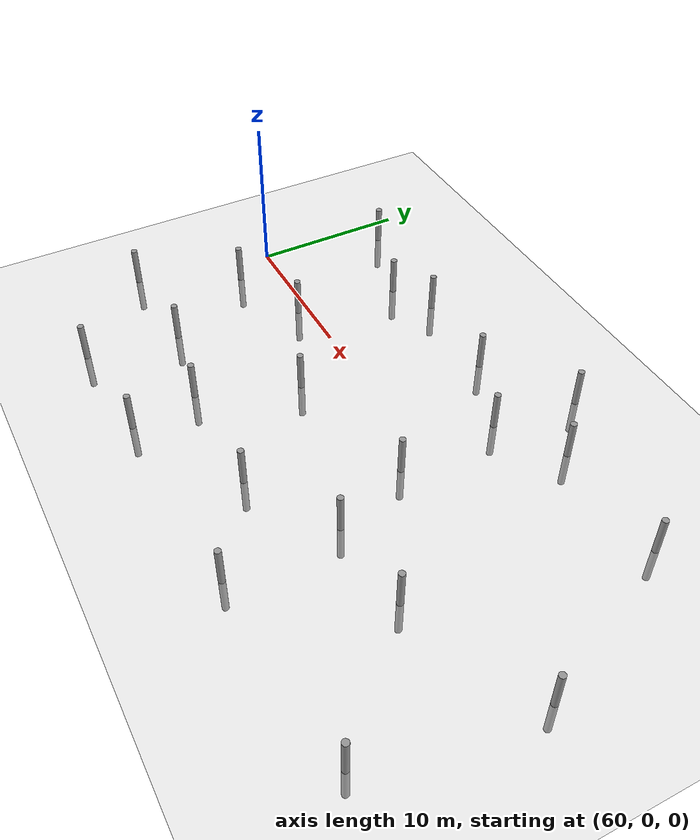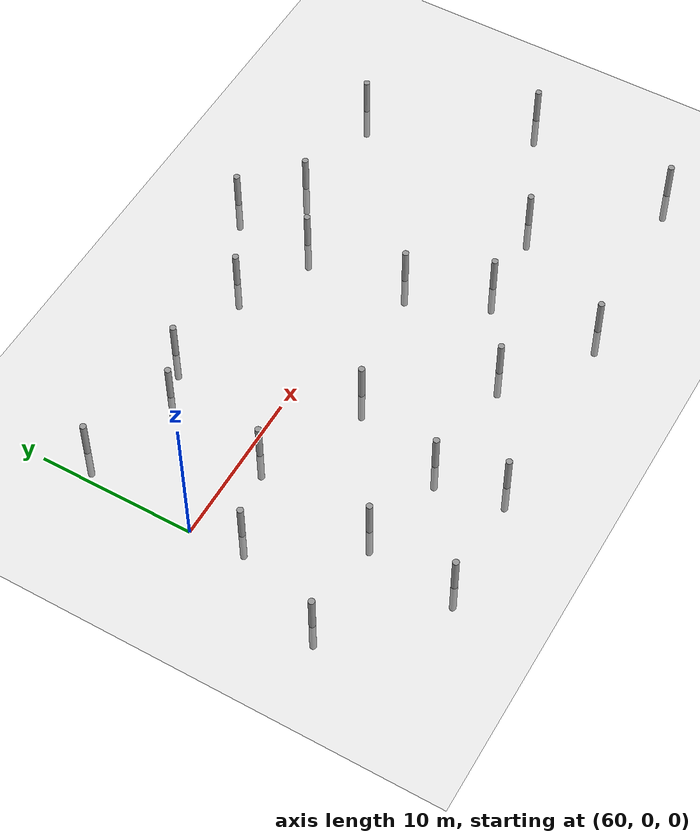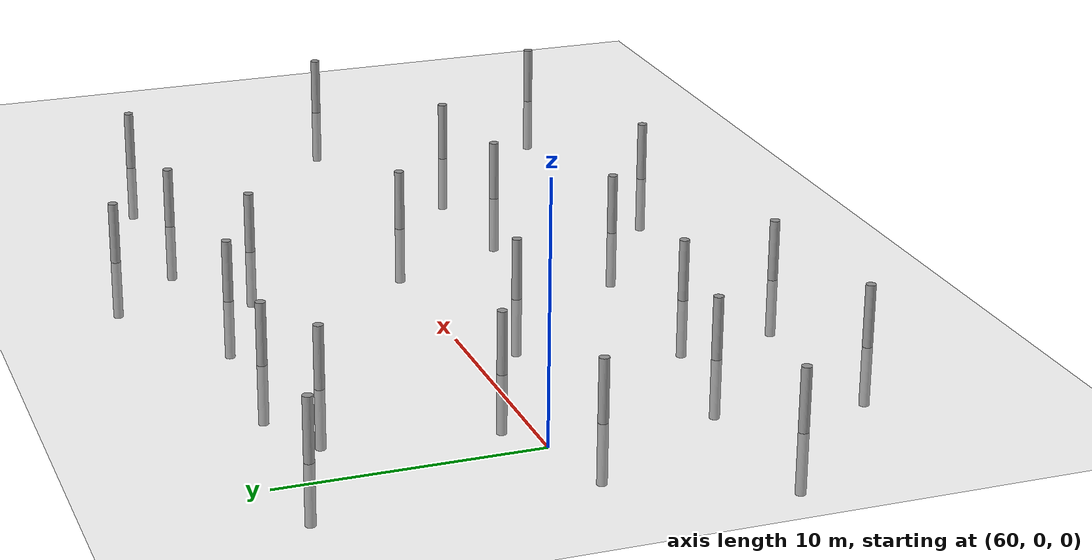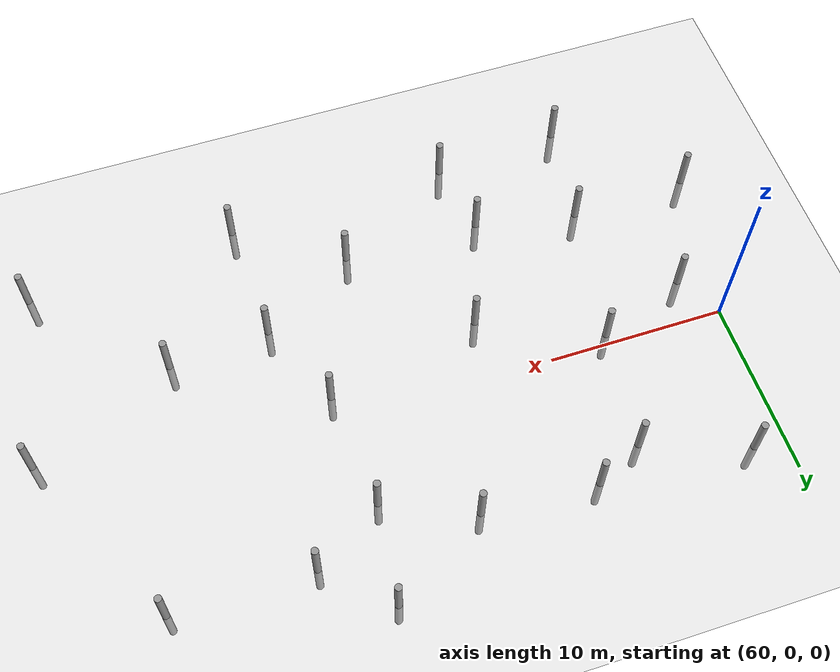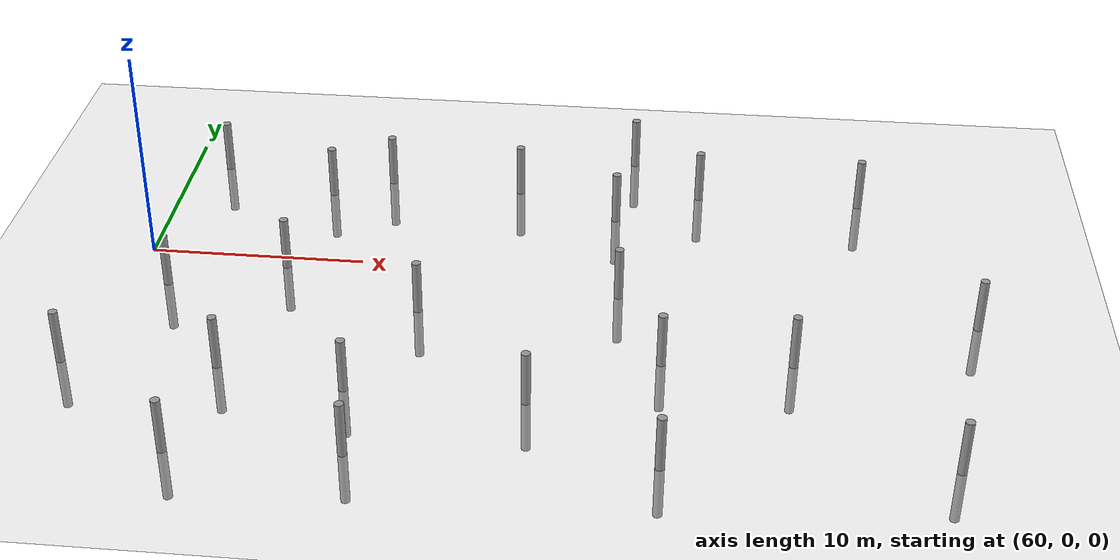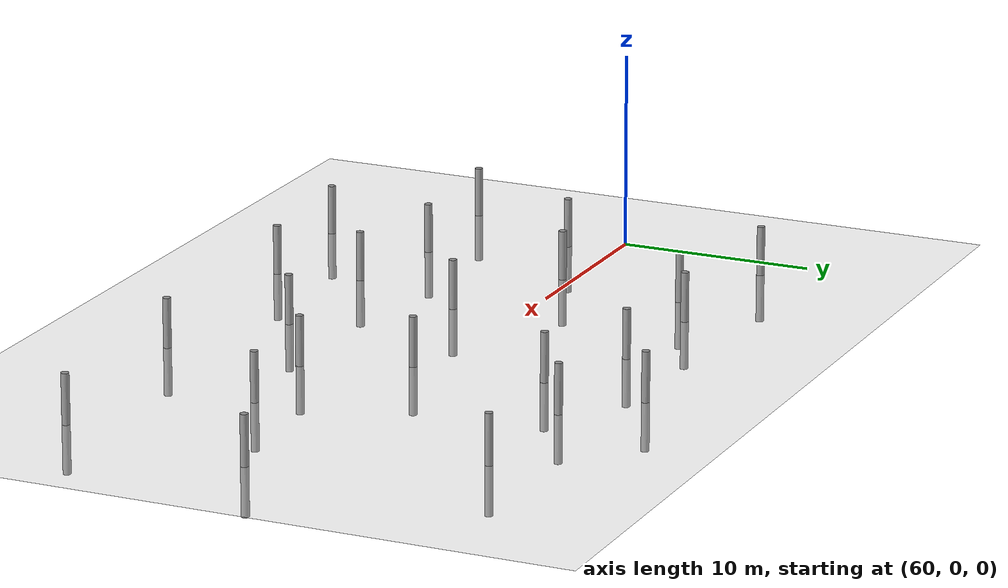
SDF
<sdf version="1.6">
 <world name="default">
  <model name="ground_plane">
   <static>1</static>
   <link name="link">
    <collision name="collision">
     <geometry><plane><normal>0 0 1</normal><size>100 100</size></plane></geometry>
     <surface><friction><ode><mu>100</mu><mu2>50</mu2></ode></friction></surface>
    </collision>
    <visual name="visual">
     <cast_shadows>0</cast_shadows>
     <geometry><plane><normal>0 0 1</normal><size>100 100</size></plane></geometry>
     <material>
      <script><uri>file://media/materials/scripts/gazebo.material</uri><name>Gazebo/Grey</name></script>
     </material>
    </visual>
   </link>
  </model>
  <model name="empty_pillars_3">
   <model name="empty_pillar_clone_11">
    <link name="link">
     <inertial>
      <mass>1</mass>
      <inertia><ixx>0.145833</ixx><ixy>0</ixy><ixz>0</ixz><iyy>0.145833</iyy><iyz>0</iyz><izz>0.125</izz></inertia>
     </inertial>
     <visual name="visual">
      <geometry><cylinder><radius>0.2</radius><length>5</length></cylinder></geometry>
      <material>
       <script><name>Gazebo/Grey</name><uri>file://media/materials/scripts/gazebo.material</uri></script>
       <shader type="vertex"><normal_map>__default__</normal_map></shader>
       <ambient>0.3 0.3 0.3 1</ambient>
       <diffuse>0.7 0.7 0.7 1</diffuse>
       <specular>0.01 0.01 0.01 1</specular>
       <emissive>0 0 0 1</emissive>
      </material>
     </visual>
     <collision name="collision">
      <geometry><cylinder><radius>0.05</radius><length>5</length></cylinder></geometry>
      <surface>
       <friction>
        <ode><mu>1</mu><mu2>1</mu2><fdir1>0 0 0</fdir1><slip1>0</slip1><slip2>0</slip2></ode>
        <torsional>
         <coefficient>1</coefficient>
         <patch_radius>0</patch_radius>
         <surface_radius>0</surface_radius>
         <use_patch_radius>1</use_patch_radius>
         <ode><slip>0</slip></ode>
        </torsional>
       </friction>
       <bounce><restitution_coefficient>0</restitution_coefficient><threshold>1e+06</threshold></bounce>
       <contact>
        <collide_without_contact>0</collide_without_contact>
        <collide_without_contact_bitmask>1</collide_without_contact_bitmask>
        <collide_bitmask>1</collide_bitmask>
        <ode>
         <soft_cfm>0</soft_cfm>
         <soft_erp>0.2</soft_erp>
         <kp>1e+13</kp>
         <kd>1</kd>
         <max_vel>0.01</max_vel>
         <min_depth>0</min_depth>
        </ode>
        <bullet>
         <split_impulse>1</split_impulse>
         <split_impulse_penetration_threshold>-0.01</split_impulse_penetration_threshold>
         <soft_cfm>0</soft_cfm>
         <soft_erp>0.2</soft_erp>
         <kp>1e+13</kp>
         <kd>1</kd>
        </bullet>
       </contact>
      </surface>
     </collision>
    </link>
    <static>0</static>
    <pose>7.98536 -17.8403 0 0 -0 0</pose>
   </model>
   <model name="empty_pillar_clone_12">
    <link name="link">
     <inertial>
      <mass>1</mass>
      <inertia><ixx>0.145833</ixx><ixy>0</ixy><ixz>0</ixz><iyy>0.145833</iyy><iyz>0</iyz><izz>0.125</izz></inertia>
     </inertial>
     <visual name="visual">
      <geometry><cylinder><radius>0.2</radius><length>5</length></cylinder></geometry>
      <material>
       <script><name>Gazebo/Grey</name><uri>file://media/materials/scripts/gazebo.material</uri></script>
       <shader type="vertex"><normal_map>__default__</normal_map></shader>
       <ambient>0.3 0.3 0.3 1</ambient>
       <diffuse>0.7 0.7 0.7 1</diffuse>
       <specular>0.01 0.01 0.01 1</specular>
       <emissive>0 0 0 1</emissive>
      </material>
     </visual>
     <collision name="collision">
      <geometry><cylinder><radius>0.05</radius><length>5</length></cylinder></geometry>
      <surface>
       <friction>
        <ode><mu>1</mu><mu2>1</mu2><fdir1>0 0 0</fdir1><slip1>0</slip1><slip2>0</slip2></ode>
        <torsional>
         <coefficient>1</coefficient>
         <patch_radius>0</patch_radius>
         <surface_radius>0</surface_radius>
         <use_patch_radius>1</use_patch_radius>
         <ode><slip>0</slip></ode>
        </torsional>
       </friction>
       <bounce><restitution_coefficient>0</restitution_coefficient><threshold>1e+06</threshold></bounce>
       <contact>
        <collide_without_contact>0</collide_without_contact>
        <collide_without_contact_bitmask>1</collide_without_contact_bitmask>
        <collide_bitmask>1</collide_bitmask>
        <ode>
         <soft_cfm>0</soft_cfm>
         <soft_erp>0.2</soft_erp>
         <kp>1e+13</kp>
         <kd>1</kd>
         <max_vel>0.01</max_vel>
         <min_depth>0</min_depth>
        </ode>
        <bullet>
         <split_impulse>1</split_impulse>
         <split_impulse_penetration_threshold>-0.01</split_impulse_penetration_threshold>
         <soft_cfm>0</soft_cfm>
         <soft_erp>0.2</soft_erp>
         <kp>1e+13</kp>
         <kd>1</kd>
        </bullet>
       </contact>
      </surface>
     </collision>
    </link>
    <static>0</static>
    <pose>-4.01464 -20.8403 0 0 -0 0</pose>
   </model>
   <model name="empty_pillar_clone_34">
    <link name="link">
     <inertial>
      <mass>1</mass>
      <inertia><ixx>0.145833</ixx><ixy>0</ixy><ixz>0</ixz><iyy>0.145833</iyy><iyz>0</iyz><izz>0.125</izz></inertia>
     </inertial>
     <visual name="visual">
      <geometry><cylinder><radius>0.2</radius><length>5</length></cylinder></geometry>
      <material>
       <script><name>Gazebo/Grey</name><uri>file://media/materials/scripts/gazebo.material</uri></script>
       <shader type="vertex"><normal_map>__default__</normal_map></shader>
       <ambient>0.3 0.3 0.3 1</ambient>
       <diffuse>0.7 0.7 0.7 1</diffuse>
       <specular>0.01 0.01 0.01 1</specular>
       <emissive>0 0 0 1</emissive>
      </material>
     </visual>
     <collision name="collision">
      <geometry><cylinder><radius>0.05</radius><length>5</length></cylinder></geometry>
      <surface>
       <friction>
        <ode><mu>1</mu><mu2>1</mu2><fdir1>0 0 0</fdir1><slip1>0</slip1><slip2>0</slip2></ode>
        <torsional>
         <coefficient>1</coefficient>
         <patch_radius>0</patch_radius>
         <surface_radius>0</surface_radius>
         <use_patch_radius>1</use_patch_radius>
         <ode><slip>0</slip></ode>
        </torsional>
       </friction>
       <bounce><restitution_coefficient>0</restitution_coefficient><threshold>1e+06</threshold></bounce>
       <contact>
        <collide_without_contact>0</collide_without_contact>
        <collide_without_contact_bitmask>1</collide_without_contact_bitmask>
        <collide_bitmask>1</collide_bitmask>
        <ode>
         <soft_cfm>0</soft_cfm>
         <soft_erp>0.2</soft_erp>
         <kp>1e+13</kp>
         <kd>1</kd>
         <max_vel>0.01</max_vel>
         <min_depth>0</min_depth>
        </ode>
        <bullet>
         <split_impulse>1</split_impulse>
         <split_impulse_penetration_threshold>-0.01</split_impulse_penetration_threshold>
         <soft_cfm>0</soft_cfm>
         <soft_erp>0.2</soft_erp>
         <kp>1e+13</kp>
         <kd>1</kd>
        </bullet>
       </contact>
      </surface>
     </collision>
    </link>
    <static>0</static>
    <pose>19.0861 -20.8946 0 0 -0 0</pose>
   </model>
   <model name="empty_pillar_clone_42">
    <link name="link">
     <inertial>
      <mass>1</mass>
      <inertia><ixx>0.145833</ixx><ixy>0</ixy><ixz>0</ixz><iyy>0.145833</iyy><iyz>0</iyz><izz>0.125</izz></inertia>
     </inertial>
     <visual name="visual">
      <geometry><cylinder><radius>0.2</radius><length>5</length></cylinder></geometry>
      <material>
       <script><name>Gazebo/Grey</name><uri>file://media/materials/scripts/gazebo.material</uri></script>
       <shader type="vertex"><normal_map>__default__</normal_map></shader>
       <ambient>0.3 0.3 0.3 1</ambient>
       <diffuse>0.7 0.7 0.7 1</diffuse>
       <specular>0.01 0.01 0.01 1</specular>
       <emissive>0 0 0 1</emissive>
      </material>
     </visual>
     <collision name="collision">
      <geometry><cylinder><radius>0.05</radius><length>5</length></cylinder></geometry>
      <surface>
       <friction>
        <ode><mu>1</mu><mu2>1</mu2><fdir1>0 0 0</fdir1><slip1>0</slip1><slip2>0</slip2></ode>
        <torsional>
         <coefficient>1</coefficient>
         <patch_radius>0</patch_radius>
         <surface_radius>0</surface_radius>
         <use_patch_radius>1</use_patch_radius>
         <ode><slip>0</slip></ode>
        </torsional>
       </friction>
       <bounce><restitution_coefficient>0</restitution_coefficient><threshold>1e+06</threshold></bounce>
       <contact>
        <collide_without_contact>0</collide_without_contact>
        <collide_without_contact_bitmask>1</collide_without_contact_bitmask>
        <collide_bitmask>1</collide_bitmask>
        <ode>
         <soft_cfm>0</soft_cfm>
         <soft_erp>0.2</soft_erp>
         <kp>1e+13</kp>
         <kd>1</kd>
         <max_vel>0.01</max_vel>
         <min_depth>0</min_depth>
        </ode>
        <bullet>
         <split_impulse>1</split_impulse>
         <split_impulse_penetration_threshold>-0.01</split_impulse_penetration_threshold>
         <soft_cfm>0</soft_cfm>
         <soft_erp>0.2</soft_erp>
         <kp>1e+13</kp>
         <kd>1</kd>
        </bullet>
       </contact>
      </surface>
     </collision>
    </link>
    <static>0</static>
    <pose>-12.5409 -20.2416 0 0 -0 0</pose>
   </model>
   <model name="empty_pillar_clone_44">
    <link name="link">
     <inertial>
      <mass>1</mass>
      <inertia><ixx>0.145833</ixx><ixy>0</ixy><ixz>0</ixz><iyy>0.145833</iyy><iyz>0</iyz><izz>0.125</izz></inertia>
     </inertial>
     <visual name="visual">
      <geometry><cylinder><radius>0.2</radius><length>5</length></cylinder></geometry>
      <material>
       <script><name>Gazebo/Grey</name><uri>file://media/materials/scripts/gazebo.material</uri></script>
       <shader type="vertex"><normal_map>__default__</normal_map></shader>
       <ambient>0.3 0.3 0.3 1</ambient>
       <diffuse>0.7 0.7 0.7 1</diffuse>
       <specular>0.01 0.01 0.01 1</specular>
       <emissive>0 0 0 1</emissive>
      </material>
     </visual>
     <collision name="collision">
      <geometry><cylinder><radius>0.05</radius><length>5</length></cylinder></geometry>
      <surface>
       <friction>
        <ode><mu>1</mu><mu2>1</mu2><fdir1>0 0 0</fdir1><slip1>0</slip1><slip2>0</slip2></ode>
        <torsional>
         <coefficient>1</coefficient>
         <patch_radius>0</patch_radius>
         <surface_radius>0</surface_radius>
         <use_patch_radius>1</use_patch_radius>
         <ode><slip>0</slip></ode>
        </torsional>
       </friction>
       <bounce><restitution_coefficient>0</restitution_coefficient><threshold>1e+06</threshold></bounce>
       <contact>
        <collide_without_contact>0</collide_without_contact>
        <collide_without_contact_bitmask>1</collide_without_contact_bitmask>
        <collide_bitmask>1</collide_bitmask>
        <ode>
         <soft_cfm>0</soft_cfm>
         <soft_erp>0.2</soft_erp>
         <kp>1e+13</kp>
         <kd>1</kd>
         <max_vel>0.01</max_vel>
         <min_depth>0</min_depth>
        </ode>
        <bullet>
         <split_impulse>1</split_impulse>
         <split_impulse_penetration_threshold>-0.01</split_impulse_penetration_threshold>
         <soft_cfm>0</soft_cfm>
         <soft_erp>0.2</soft_erp>
         <kp>1e+13</kp>
         <kd>1</kd>
        </bullet>
       </contact>
      </surface>
     </collision>
    </link>
    <static>0</static>
    <pose>-6.78285 -22.2729 0 0 -0 0</pose>
   </model>
   <model name="empty_pillar_clone_46">
    <link name="link">
     <inertial>
      <mass>1</mass>
      <inertia><ixx>0.145833</ixx><ixy>0</ixy><ixz>0</ixz><iyy>0.145833</iyy><iyz>0</iyz><izz>0.125</izz></inertia>
     </inertial>
     <visual name="visual">
      <geometry><cylinder><radius>0.2</radius><length>5</length></cylinder></geometry>
      <material>
       <script><name>Gazebo/Grey</name><uri>file://media/materials/scripts/gazebo.material</uri></script>
       <shader type="vertex"><normal_map>__default__</normal_map></shader>
       <ambient>0.3 0.3 0.3 1</ambient>
       <diffuse>0.7 0.7 0.7 1</diffuse>
       <specular>0.01 0.01 0.01 1</specular>
       <emissive>0 0 0 1</emissive>
      </material>
     </visual>
     <collision name="collision">
      <geometry><cylinder><radius>0.05</radius><length>5</length></cylinder></geometry>
      <surface>
       <friction>
        <ode><mu>1</mu><mu2>1</mu2><fdir1>0 0 0</fdir1><slip1>0</slip1><slip2>0</slip2></ode>
        <torsional>
         <coefficient>1</coefficient>
         <patch_radius>0</patch_radius>
         <surface_radius>0</surface_radius>
         <use_patch_radius>1</use_patch_radius>
         <ode><slip>0</slip></ode>
        </torsional>
       </friction>
       <bounce><restitution_coefficient>0</restitution_coefficient><threshold>1e+06</threshold></bounce>
       <contact>
        <collide_without_contact>0</collide_without_contact>
        <collide_without_contact_bitmask>1</collide_without_contact_bitmask>
        <collide_bitmask>1</collide_bitmask>
        <ode>
         <soft_cfm>0</soft_cfm>
         <soft_erp>0.2</soft_erp>
         <kp>1e+13</kp>
         <kd>1</kd>
         <max_vel>0.01</max_vel>
         <min_depth>0</min_depth>
        </ode>
        <bullet>
         <split_impulse>1</split_impulse>
         <split_impulse_penetration_threshold>-0.01</split_impulse_penetration_threshold>
         <soft_cfm>0</soft_cfm>
         <soft_erp>0.2</soft_erp>
         <kp>1e+13</kp>
         <kd>1</kd>
        </bullet>
       </contact>
      </surface>
     </collision>
    </link>
    <static>0</static>
    <pose>2.45033 -21.185 0 0 -0 0</pose>
   </model>
   <model name="empty_pillar_clone_52">
    <link name="link">
     <inertial>
      <mass>1</mass>
      <inertia><ixx>0.145833</ixx><ixy>0</ixy><ixz>0</ixz><iyy>0.145833</iyy><iyz>0</iyz><izz>0.125</izz></inertia>
     </inertial>
     <visual name="visual">
      <geometry><cylinder><radius>0.2</radius><length>5</length></cylinder></geometry>
      <material>
       <script><name>Gazebo/Grey</name><uri>file://media/materials/scripts/gazebo.material</uri></script>
       <shader type="vertex"><normal_map>__default__</normal_map></shader>
       <ambient>0.3 0.3 0.3 1</ambient>
       <diffuse>0.7 0.7 0.7 1</diffuse>
       <specular>0.01 0.01 0.01 1</specular>
       <emissive>0 0 0 1</emissive>
      </material>
     </visual>
     <collision name="collision">
      <geometry><cylinder><radius>0.05</radius><length>5</length></cylinder></geometry>
      <surface>
       <friction>
        <ode><mu>1</mu><mu2>1</mu2><fdir1>0 0 0</fdir1><slip1>0</slip1><slip2>0</slip2></ode>
        <torsional>
         <coefficient>1</coefficient>
         <patch_radius>0</patch_radius>
         <surface_radius>0</surface_radius>
         <use_patch_radius>1</use_patch_radius>
         <ode><slip>0</slip></ode>
        </torsional>
       </friction>
       <bounce><restitution_coefficient>0</restitution_coefficient><threshold>1e+06</threshold></bounce>
       <contact>
        <collide_without_contact>0</collide_without_contact>
        <collide_without_contact_bitmask>1</collide_without_contact_bitmask>
        <collide_bitmask>1</collide_bitmask>
        <ode>
         <soft_cfm>0</soft_cfm>
         <soft_erp>0.2</soft_erp>
         <kp>1e+13</kp>
         <kd>1</kd>
         <max_vel>0.01</max_vel>
         <min_depth>0</min_depth>
        </ode>
        <bullet>
         <split_impulse>1</split_impulse>
         <split_impulse_penetration_threshold>-0.01</split_impulse_penetration_threshold>
         <soft_cfm>0</soft_cfm>
         <soft_erp>0.2</soft_erp>
         <kp>1e+13</kp>
         <kd>1</kd>
        </bullet>
       </contact>
      </surface>
     </collision>
    </link>
    <static>0</static>
    <pose>11.2833 -20.8743 0 0 -0 0</pose>
   </model>
   <model name="empty_pillar_clone_53">
    <link name="link">
     <inertial>
      <mass>1</mass>
      <inertia><ixx>0.145833</ixx><ixy>0</ixy><ixz>0</ixz><iyy>0.145833</iyy><iyz>0</iyz><izz>0.125</izz></inertia>
     </inertial>
     <visual name="visual">
      <geometry><cylinder><radius>0.2</radius><length>5</length></cylinder></geometry>
      <material>
       <script><name>Gazebo/Grey</name><uri>file://media/materials/scripts/gazebo.material</uri></script>
       <shader type="vertex"><normal_map>__default__</normal_map></shader>
       <ambient>0.3 0.3 0.3 1</ambient>
       <diffuse>0.7 0.7 0.7 1</diffuse>
       <specular>0.01 0.01 0.01 1</specular>
       <emissive>0 0 0 1</emissive>
      </material>
     </visual>
     <collision name="collision">
      <geometry><cylinder><radius>0.05</radius><length>5</length></cylinder></geometry>
      <surface>
       <friction>
        <ode><mu>1</mu><mu2>1</mu2><fdir1>0 0 0</fdir1><slip1>0</slip1><slip2>0</slip2></ode>
        <torsional>
         <coefficient>1</coefficient>
         <patch_radius>0</patch_radius>
         <surface_radius>0</surface_radius>
         <use_patch_radius>1</use_patch_radius>
         <ode><slip>0</slip></ode>
        </torsional>
       </friction>
       <bounce><restitution_coefficient>0</restitution_coefficient><threshold>1e+06</threshold></bounce>
       <contact>
        <collide_without_contact>0</collide_without_contact>
        <collide_without_contact_bitmask>1</collide_without_contact_bitmask>
        <collide_bitmask>1</collide_bitmask>
        <ode>
         <soft_cfm>0</soft_cfm>
         <soft_erp>0.2</soft_erp>
         <kp>1e+13</kp>
         <kd>1</kd>
         <max_vel>0.01</max_vel>
         <min_depth>0</min_depth>
        </ode>
        <bullet>
         <split_impulse>1</split_impulse>
         <split_impulse_penetration_threshold>-0.01</split_impulse_penetration_threshold>
         <soft_cfm>0</soft_cfm>
         <soft_erp>0.2</soft_erp>
         <kp>1e+13</kp>
         <kd>1</kd>
        </bullet>
       </contact>
      </surface>
     </collision>
    </link>
    <static>0</static>
    <pose>7.32522 -23.3523 0 0 -0 0</pose>
   </model>
   <static>0</static>
   <pose>74.2615 28.3982 0 0 -0 0</pose>
  </model>
  <model name="empty_pillars_10">
   <model name="empty_pillar_clone_16">
    <link name="link">
     <inertial>
      <mass>1</mass>
      <inertia><ixx>0.145833</ixx><ixy>0</ixy><ixz>0</ixz><iyy>0.145833</iyy><iyz>0</iyz><izz>0.125</izz></inertia>
     </inertial>
     <visual name="visual">
      <geometry><cylinder><radius>0.2</radius><length>5</length></cylinder></geometry>
      <material>
       <script><name>Gazebo/Grey</name><uri>file://media/materials/scripts/gazebo.material</uri></script>
       <shader type="vertex"><normal_map>__default__</normal_map></shader>
       <ambient>0.3 0.3 0.3 1</ambient>
       <diffuse>0.7 0.7 0.7 1</diffuse>
       <specular>0.01 0.01 0.01 1</specular>
       <emissive>0 0 0 1</emissive>
      </material>
     </visual>
     <collision name="collision">
      <geometry><cylinder><radius>0.05</radius><length>5</length></cylinder></geometry>
      <surface>
       <friction>
        <ode><mu>1</mu><mu2>1</mu2><fdir1>0 0 0</fdir1><slip1>0</slip1><slip2>0</slip2></ode>
        <torsional>
         <coefficient>1</coefficient>
         <patch_radius>0</patch_radius>
         <surface_radius>0</surface_radius>
         <use_patch_radius>1</use_patch_radius>
         <ode><slip>0</slip></ode>
        </torsional>
       </friction>
       <bounce><restitution_coefficient>0</restitution_coefficient><threshold>1e+06</threshold></bounce>
       <contact>
        <collide_without_contact>0</collide_without_contact>
        <collide_without_contact_bitmask>1</collide_without_contact_bitmask>
        <collide_bitmask>1</collide_bitmask>
        <ode>
         <soft_cfm>0</soft_cfm>
         <soft_erp>0.2</soft_erp>
         <kp>1e+13</kp>
         <kd>1</kd>
         <max_vel>0.01</max_vel>
         <min_depth>0</min_depth>
        </ode>
        <bullet>
         <split_impulse>1</split_impulse>
         <split_impulse_penetration_threshold>-0.01</split_impulse_penetration_threshold>
         <soft_cfm>0</soft_cfm>
         <soft_erp>0.2</soft_erp>
         <kp>1e+13</kp>
         <kd>1</kd>
        </bullet>
       </contact>
      </surface>
     </collision>
    </link>
    <static>0</static>
    <pose>-9.20789 13.0504 0 0 -0 0</pose>
   </model>
   <model name="empty_pillar_clone_17">
    <link name="link">
     <inertial>
      <mass>1</mass>
      <inertia><ixx>0.145833</ixx><ixy>0</ixy><ixz>0</ixz><iyy>0.145833</iyy><iyz>0</iyz><izz>0.125</izz></inertia>
     </inertial>
     <visual name="visual">
      <geometry><cylinder><radius>0.2</radius><length>5</length></cylinder></geometry>
      <material>
       <script><name>Gazebo/Grey</name><uri>file://media/materials/scripts/gazebo.material</uri></script>
       <shader type="vertex"><normal_map>__default__</normal_map></shader>
       <ambient>0.3 0.3 0.3 1</ambient>
       <diffuse>0.7 0.7 0.7 1</diffuse>
       <specular>0.01 0.01 0.01 1</specular>
       <emissive>0 0 0 1</emissive>
      </material>
     </visual>
     <collision name="collision">
      <geometry><cylinder><radius>0.05</radius><length>5</length></cylinder></geometry>
      <surface>
       <friction>
        <ode><mu>1</mu><mu2>1</mu2><fdir1>0 0 0</fdir1><slip1>0</slip1><slip2>0</slip2></ode>
        <torsional>
         <coefficient>1</coefficient>
         <patch_radius>0</patch_radius>
         <surface_radius>0</surface_radius>
         <use_patch_radius>1</use_patch_radius>
         <ode><slip>0</slip></ode>
        </torsional>
       </friction>
       <bounce><restitution_coefficient>0</restitution_coefficient><threshold>1e+06</threshold></bounce>
       <contact>
        <collide_without_contact>0</collide_without_contact>
        <collide_without_contact_bitmask>1</collide_without_contact_bitmask>
        <collide_bitmask>1</collide_bitmask>
        <ode>
         <soft_cfm>0</soft_cfm>
         <soft_erp>0.2</soft_erp>
         <kp>1e+13</kp>
         <kd>1</kd>
         <max_vel>0.01</max_vel>
         <min_depth>0</min_depth>
        </ode>
        <bullet>
         <split_impulse>1</split_impulse>
         <split_impulse_penetration_threshold>-0.01</split_impulse_penetration_threshold>
         <soft_cfm>0</soft_cfm>
         <soft_erp>0.2</soft_erp>
         <kp>1e+13</kp>
         <kd>1</kd>
        </bullet>
       </contact>
      </surface>
     </collision>
    </link>
    <static>0</static>
    <pose>-16.0449 12.755 0 0 -0 0</pose>
   </model>
   <model name="empty_pillar_clone_19">
    <link name="link">
     <inertial>
      <mass>1</mass>
      <inertia><ixx>0.145833</ixx><ixy>0</ixy><ixz>0</ixz><iyy>0.145833</iyy><iyz>0</iyz><izz>0.125</izz></inertia>
     </inertial>
     <visual name="visual">
      <geometry><cylinder><radius>0.2</radius><length>5</length></cylinder></geometry>
      <material>
       <script><name>Gazebo/Grey</name><uri>file://media/materials/scripts/gazebo.material</uri></script>
       <shader type="vertex"><normal_map>__default__</normal_map></shader>
       <ambient>0.3 0.3 0.3 1</ambient>
       <diffuse>0.7 0.7 0.7 1</diffuse>
       <specular>0.01 0.01 0.01 1</specular>
       <emissive>0 0 0 1</emissive>
      </material>
     </visual>
     <collision name="collision">
      <geometry><cylinder><radius>0.05</radius><length>5</length></cylinder></geometry>
      <surface>
       <friction>
        <ode><mu>1</mu><mu2>1</mu2><fdir1>0 0 0</fdir1><slip1>0</slip1><slip2>0</slip2></ode>
        <torsional>
         <coefficient>1</coefficient>
         <patch_radius>0</patch_radius>
         <surface_radius>0</surface_radius>
         <use_patch_radius>1</use_patch_radius>
         <ode><slip>0</slip></ode>
        </torsional>
       </friction>
       <bounce><restitution_coefficient>0</restitution_coefficient><threshold>1e+06</threshold></bounce>
       <contact>
        <collide_without_contact>0</collide_without_contact>
        <collide_without_contact_bitmask>1</collide_without_contact_bitmask>
        <collide_bitmask>1</collide_bitmask>
        <ode>
         <soft_cfm>0</soft_cfm>
         <soft_erp>0.2</soft_erp>
         <kp>1e+13</kp>
         <kd>1</kd>
         <max_vel>0.01</max_vel>
         <min_depth>0</min_depth>
        </ode>
        <bullet>
         <split_impulse>1</split_impulse>
         <split_impulse_penetration_threshold>-0.01</split_impulse_penetration_threshold>
         <soft_cfm>0</soft_cfm>
         <soft_erp>0.2</soft_erp>
         <kp>1e+13</kp>
         <kd>1</kd>
        </bullet>
       </contact>
      </surface>
     </collision>
    </link>
    <static>0</static>
    <pose>-10.0146 7.15966 0 0 -0 0</pose>
   </model>
   <model name="empty_pillar_clone_20">
    <link name="link">
     <inertial>
      <mass>1</mass>
      <inertia><ixx>0.145833</ixx><ixy>0</ixy><ixz>0</ixz><iyy>0.145833</iyy><iyz>0</iyz><izz>0.125</izz></inertia>
     </inertial>
     <visual name="visual">
      <geometry><cylinder><radius>0.2</radius><length>5</length></cylinder></geometry>
      <material>
       <script><name>Gazebo/Grey</name><uri>file://media/materials/scripts/gazebo.material</uri></script>
       <shader type="vertex"><normal_map>__default__</normal_map></shader>
       <ambient>0.3 0.3 0.3 1</ambient>
       <diffuse>0.7 0.7 0.7 1</diffuse>
       <specular>0.01 0.01 0.01 1</specular>
       <emissive>0 0 0 1</emissive>
      </material>
     </visual>
     <collision name="collision">
      <geometry><cylinder><radius>0.05</radius><length>5</length></cylinder></geometry>
      <surface>
       <friction>
        <ode><mu>1</mu><mu2>1</mu2><fdir1>0 0 0</fdir1><slip1>0</slip1><slip2>0</slip2></ode>
        <torsional>
         <coefficient>1</coefficient>
         <patch_radius>0</patch_radius>
         <surface_radius>0</surface_radius>
         <use_patch_radius>1</use_patch_radius>
         <ode><slip>0</slip></ode>
        </torsional>
       </friction>
       <bounce><restitution_coefficient>0</restitution_coefficient><threshold>1e+06</threshold></bounce>
       <contact>
        <collide_without_contact>0</collide_without_contact>
        <collide_without_contact_bitmask>1</collide_without_contact_bitmask>
        <collide_bitmask>1</collide_bitmask>
        <ode>
         <soft_cfm>0</soft_cfm>
         <soft_erp>0.2</soft_erp>
         <kp>1e+13</kp>
         <kd>1</kd>
         <max_vel>0.01</max_vel>
         <min_depth>0</min_depth>
        </ode>
        <bullet>
         <split_impulse>1</split_impulse>
         <split_impulse_penetration_threshold>-0.01</split_impulse_penetration_threshold>
         <soft_cfm>0</soft_cfm>
         <soft_erp>0.2</soft_erp>
         <kp>1e+13</kp>
         <kd>1</kd>
        </bullet>
       </contact>
      </surface>
     </collision>
    </link>
    <static>0</static>
    <pose>-13.0146 19.1597 0 0 -0 0</pose>
   </model>
   <model name="empty_pillar_clone_23">
    <link name="link">
     <inertial>
      <mass>1</mass>
      <inertia><ixx>0.145833</ixx><ixy>0</ixy><ixz>0</ixz><iyy>0.145833</iyy><iyz>0</iyz><izz>0.125</izz></inertia>
     </inertial>
     <visual name="visual">
      <geometry><cylinder><radius>0.2</radius><length>5</length></cylinder></geometry>
      <material>
       <script><name>Gazebo/Grey</name><uri>file://media/materials/scripts/gazebo.material</uri></script>
       <shader type="vertex"><normal_map>__default__</normal_map></shader>
       <ambient>0.3 0.3 0.3 1</ambient>
       <diffuse>0.7 0.7 0.7 1</diffuse>
       <specular>0.01 0.01 0.01 1</specular>
       <emissive>0 0 0 1</emissive>
      </material>
     </visual>
     <collision name="collision">
      <geometry><cylinder><radius>0.05</radius><length>5</length></cylinder></geometry>
      <surface>
       <friction>
        <ode><mu>1</mu><mu2>1</mu2><fdir1>0 0 0</fdir1><slip1>0</slip1><slip2>0</slip2></ode>
        <torsional>
         <coefficient>1</coefficient>
         <patch_radius>0</patch_radius>
         <surface_radius>0</surface_radius>
         <use_patch_radius>1</use_patch_radius>
         <ode><slip>0</slip></ode>
        </torsional>
       </friction>
       <bounce><restitution_coefficient>0</restitution_coefficient><threshold>1e+06</threshold></bounce>
       <contact>
        <collide_without_contact>0</collide_without_contact>
        <collide_without_contact_bitmask>1</collide_without_contact_bitmask>
        <collide_bitmask>1</collide_bitmask>
        <ode>
         <soft_cfm>0</soft_cfm>
         <soft_erp>0.2</soft_erp>
         <kp>1e+13</kp>
         <kd>1</kd>
         <max_vel>0.01</max_vel>
         <min_depth>0</min_depth>
        </ode>
        <bullet>
         <split_impulse>1</split_impulse>
         <split_impulse_penetration_threshold>-0.01</split_impulse_penetration_threshold>
         <soft_cfm>0</soft_cfm>
         <soft_erp>0.2</soft_erp>
         <kp>1e+13</kp>
         <kd>1</kd>
        </bullet>
       </contact>
      </surface>
     </collision>
    </link>
    <static>0</static>
    <pose>-1.21984 18.1273 0 0 -0 0</pose>
   </model>
   <model name="empty_pillar_clone_24">
    <link name="link">
     <inertial>
      <mass>1</mass>
      <inertia><ixx>0.145833</ixx><ixy>0</ixy><ixz>0</ixz><iyy>0.145833</iyy><iyz>0</iyz><izz>0.125</izz></inertia>
     </inertial>
     <visual name="visual">
      <geometry><cylinder><radius>0.2</radius><length>5</length></cylinder></geometry>
      <material>
       <script><name>Gazebo/Grey</name><uri>file://media/materials/scripts/gazebo.material</uri></script>
       <shader type="vertex"><normal_map>__default__</normal_map></shader>
       <ambient>0.3 0.3 0.3 1</ambient>
       <diffuse>0.7 0.7 0.7 1</diffuse>
       <specular>0.01 0.01 0.01 1</specular>
       <emissive>0 0 0 1</emissive>
      </material>
     </visual>
     <collision name="collision">
      <geometry><cylinder><radius>0.05</radius><length>5</length></cylinder></geometry>
      <surface>
       <friction>
        <ode><mu>1</mu><mu2>1</mu2><fdir1>0 0 0</fdir1><slip1>0</slip1><slip2>0</slip2></ode>
        <torsional>
         <coefficient>1</coefficient>
         <patch_radius>0</patch_radius>
         <surface_radius>0</surface_radius>
         <use_patch_radius>1</use_patch_radius>
         <ode><slip>0</slip></ode>
        </torsional>
       </friction>
       <bounce><restitution_coefficient>0</restitution_coefficient><threshold>1e+06</threshold></bounce>
       <contact>
        <collide_without_contact>0</collide_without_contact>
        <collide_without_contact_bitmask>1</collide_without_contact_bitmask>
        <collide_bitmask>1</collide_bitmask>
        <ode>
         <soft_cfm>0</soft_cfm>
         <soft_erp>0.2</soft_erp>
         <kp>1e+13</kp>
         <kd>1</kd>
         <max_vel>0.01</max_vel>
         <min_depth>0</min_depth>
        </ode>
        <bullet>
         <split_impulse>1</split_impulse>
         <split_impulse_penetration_threshold>-0.01</split_impulse_penetration_threshold>
         <soft_cfm>0</soft_cfm>
         <soft_erp>0.2</soft_erp>
         <kp>1e+13</kp>
         <kd>1</kd>
        </bullet>
       </contact>
      </surface>
     </collision>
    </link>
    <static>0</static>
    <pose>-3.46957 11.9413 0 0 -0 0</pose>
   </model>
   <model name="empty_pillar_clone_25">
    <link name="link">
     <inertial>
      <mass>1</mass>
      <inertia><ixx>0.145833</ixx><ixy>0</ixy><ixz>0</ixz><iyy>0.145833</iyy><iyz>0</iyz><izz>0.125</izz></inertia>
     </inertial>
     <visual name="visual">
      <geometry><cylinder><radius>0.2</radius><length>5</length></cylinder></geometry>
      <material>
       <script><name>Gazebo/Grey</name><uri>file://media/materials/scripts/gazebo.material</uri></script>
       <shader type="vertex"><normal_map>__default__</normal_map></shader>
       <ambient>0.3 0.3 0.3 1</ambient>
       <diffuse>0.7 0.7 0.7 1</diffuse>
       <specular>0.01 0.01 0.01 1</specular>
       <emissive>0 0 0 1</emissive>
      </material>
     </visual>
     <collision name="collision">
      <geometry><cylinder><radius>0.05</radius><length>5</length></cylinder></geometry>
      <surface>
       <friction>
        <ode><mu>1</mu><mu2>1</mu2><fdir1>0 0 0</fdir1><slip1>0</slip1><slip2>0</slip2></ode>
        <torsional>
         <coefficient>1</coefficient>
         <patch_radius>0</patch_radius>
         <surface_radius>0</surface_radius>
         <use_patch_radius>1</use_patch_radius>
         <ode><slip>0</slip></ode>
        </torsional>
       </friction>
       <bounce><restitution_coefficient>0</restitution_coefficient><threshold>1e+06</threshold></bounce>
       <contact>
        <collide_without_contact>0</collide_without_contact>
        <collide_without_contact_bitmask>1</collide_without_contact_bitmask>
        <collide_bitmask>1</collide_bitmask>
        <ode>
         <soft_cfm>0</soft_cfm>
         <soft_erp>0.2</soft_erp>
         <kp>1e+13</kp>
         <kd>1</kd>
         <max_vel>0.01</max_vel>
         <min_depth>0</min_depth>
        </ode>
        <bullet>
         <split_impulse>1</split_impulse>
         <split_impulse_penetration_threshold>-0.01</split_impulse_penetration_threshold>
         <soft_cfm>0</soft_cfm>
         <soft_erp>0.2</soft_erp>
         <kp>1e+13</kp>
         <kd>1</kd>
        </bullet>
       </contact>
      </surface>
     </collision>
    </link>
    <static>0</static>
    <pose>-7.86239 21.1314 0 0 -0 0</pose>
   </model>
   <model name="empty_pillar_clone_26">
    <link name="link">
     <inertial>
      <mass>1</mass>
      <inertia><ixx>0.145833</ixx><ixy>0</ixy><ixz>0</ixz><iyy>0.145833</iyy><iyz>0</iyz><izz>0.125</izz></inertia>
     </inertial>
     <visual name="visual">
      <geometry><cylinder><radius>0.2</radius><length>5</length></cylinder></geometry>
      <material>
       <script><name>Gazebo/Grey</name><uri>file://media/materials/scripts/gazebo.material</uri></script>
       <shader type="vertex"><normal_map>__default__</normal_map></shader>
       <ambient>0.3 0.3 0.3 1</ambient>
       <diffuse>0.7 0.7 0.7 1</diffuse>
       <specular>0.01 0.01 0.01 1</specular>
       <emissive>0 0 0 1</emissive>
      </material>
     </visual>
     <collision name="collision">
      <geometry><cylinder><radius>0.05</radius><length>5</length></cylinder></geometry>
      <surface>
       <friction>
        <ode><mu>1</mu><mu2>1</mu2><fdir1>0 0 0</fdir1><slip1>0</slip1><slip2>0</slip2></ode>
        <torsional>
         <coefficient>1</coefficient>
         <patch_radius>0</patch_radius>
         <surface_radius>0</surface_radius>
         <use_patch_radius>1</use_patch_radius>
         <ode><slip>0</slip></ode>
        </torsional>
       </friction>
       <bounce><restitution_coefficient>0</restitution_coefficient><threshold>1e+06</threshold></bounce>
       <contact>
        <collide_without_contact>0</collide_without_contact>
        <collide_without_contact_bitmask>1</collide_without_contact_bitmask>
        <collide_bitmask>1</collide_bitmask>
        <ode>
         <soft_cfm>0</soft_cfm>
         <soft_erp>0.2</soft_erp>
         <kp>1e+13</kp>
         <kd>1</kd>
         <max_vel>0.01</max_vel>
         <min_depth>0</min_depth>
        </ode>
        <bullet>
         <split_impulse>1</split_impulse>
         <split_impulse_penetration_threshold>-0.01</split_impulse_penetration_threshold>
         <soft_cfm>0</soft_cfm>
         <soft_erp>0.2</soft_erp>
         <kp>1e+13</kp>
         <kd>1</kd>
        </bullet>
       </contact>
      </surface>
     </collision>
    </link>
    <static>0</static>
    <pose>7.70652 20.1444 0 0 -0 0</pose>
   </model>
   <model name="empty_pillar_clone_27">
    <link name="link">
     <inertial>
      <mass>1</mass>
      <inertia><ixx>0.145833</ixx><ixy>0</ixy><ixz>0</ixz><iyy>0.145833</iyy><iyz>0</iyz><izz>0.125</izz></inertia>
     </inertial>
     <visual name="visual">
      <geometry><cylinder><radius>0.2</radius><length>5</length></cylinder></geometry>
      <material>
       <script><name>Gazebo/Grey</name><uri>file://media/materials/scripts/gazebo.material</uri></script>
       <shader type="vertex"><normal_map>__default__</normal_map></shader>
       <ambient>0.3 0.3 0.3 1</ambient>
       <diffuse>0.7 0.7 0.7 1</diffuse>
       <specular>0.01 0.01 0.01 1</specular>
       <emissive>0 0 0 1</emissive>
      </material>
     </visual>
     <collision name="collision">
      <geometry><cylinder><radius>0.05</radius><length>5</length></cylinder></geometry>
      <surface>
       <friction>
        <ode><mu>1</mu><mu2>1</mu2><fdir1>0 0 0</fdir1><slip1>0</slip1><slip2>0</slip2></ode>
        <torsional>
         <coefficient>1</coefficient>
         <patch_radius>0</patch_radius>
         <surface_radius>0</surface_radius>
         <use_patch_radius>1</use_patch_radius>
         <ode><slip>0</slip></ode>
        </torsional>
       </friction>
       <bounce><restitution_coefficient>0</restitution_coefficient><threshold>1e+06</threshold></bounce>
       <contact>
        <collide_without_contact>0</collide_without_contact>
        <collide_without_contact_bitmask>1</collide_without_contact_bitmask>
        <collide_bitmask>1</collide_bitmask>
        <ode>
         <soft_cfm>0</soft_cfm>
         <soft_erp>0.2</soft_erp>
         <kp>1e+13</kp>
         <kd>1</kd>
         <max_vel>0.01</max_vel>
         <min_depth>0</min_depth>
        </ode>
        <bullet>
         <split_impulse>1</split_impulse>
         <split_impulse_penetration_threshold>-0.01</split_impulse_penetration_threshold>
         <soft_cfm>0</soft_cfm>
         <soft_erp>0.2</soft_erp>
         <kp>1e+13</kp>
         <kd>1</kd>
        </bullet>
       </contact>
      </surface>
     </collision>
    </link>
    <static>0</static>
    <pose>4.32163 11.823 0 0 -0 0</pose>
   </model>
   <model name="empty_pillar_clone_28">
    <link name="link">
     <inertial>
      <mass>1</mass>
      <inertia><ixx>0.145833</ixx><ixy>0</ixy><ixz>0</ixz><iyy>0.145833</iyy><iyz>0</iyz><izz>0.125</izz></inertia>
     </inertial>
     <visual name="visual">
      <geometry><cylinder><radius>0.2</radius><length>5</length></cylinder></geometry>
      <material>
       <script><name>Gazebo/Grey</name><uri>file://media/materials/scripts/gazebo.material</uri></script>
       <shader type="vertex"><normal_map>__default__</normal_map></shader>
       <ambient>0.3 0.3 0.3 1</ambient>
       <diffuse>0.7 0.7 0.7 1</diffuse>
       <specular>0.01 0.01 0.01 1</specular>
       <emissive>0 0 0 1</emissive>
      </material>
     </visual>
     <collision name="collision">
      <geometry><cylinder><radius>0.05</radius><length>5</length></cylinder></geometry>
      <surface>
       <friction>
        <ode><mu>1</mu><mu2>1</mu2><fdir1>0 0 0</fdir1><slip1>0</slip1><slip2>0</slip2></ode>
        <torsional>
         <coefficient>1</coefficient>
         <patch_radius>0</patch_radius>
         <surface_radius>0</surface_radius>
         <use_patch_radius>1</use_patch_radius>
         <ode><slip>0</slip></ode>
        </torsional>
       </friction>
       <bounce><restitution_coefficient>0</restitution_coefficient><threshold>1e+06</threshold></bounce>
       <contact>
        <collide_without_contact>0</collide_without_contact>
        <collide_without_contact_bitmask>1</collide_without_contact_bitmask>
        <collide_bitmask>1</collide_bitmask>
        <ode>
         <soft_cfm>0</soft_cfm>
         <soft_erp>0.2</soft_erp>
         <kp>1e+13</kp>
         <kd>1</kd>
         <max_vel>0.01</max_vel>
         <min_depth>0</min_depth>
        </ode>
        <bullet>
         <split_impulse>1</split_impulse>
         <split_impulse_penetration_threshold>-0.01</split_impulse_penetration_threshold>
         <soft_cfm>0</soft_cfm>
         <soft_erp>0.2</soft_erp>
         <kp>1e+13</kp>
         <kd>1</kd>
        </bullet>
       </contact>
      </surface>
     </collision>
    </link>
    <static>0</static>
    <pose>15.5447 15.5867 0 0 -0 0</pose>
   </model>
   <model name="empty_pillar_clone_29">
    <link name="link">
     <inertial>
      <mass>1</mass>
      <inertia><ixx>0.145833</ixx><ixy>0</ixy><ixz>0</ixz><iyy>0.145833</iyy><iyz>0</iyz><izz>0.125</izz></inertia>
     </inertial>
     <visual name="visual">
      <geometry><cylinder><radius>0.2</radius><length>5</length></cylinder></geometry>
      <material>
       <script><name>Gazebo/Grey</name><uri>file://media/materials/scripts/gazebo.material</uri></script>
       <shader type="vertex"><normal_map>__default__</normal_map></shader>
       <ambient>0.3 0.3 0.3 1</ambient>
       <diffuse>0.7 0.7 0.7 1</diffuse>
       <specular>0.01 0.01 0.01 1</specular>
       <emissive>0 0 0 1</emissive>
      </material>
     </visual>
     <collision name="collision">
      <geometry><cylinder><radius>0.05</radius><length>5</length></cylinder></geometry>
      <surface>
       <friction>
        <ode><mu>1</mu><mu2>1</mu2><fdir1>0 0 0</fdir1><slip1>0</slip1><slip2>0</slip2></ode>
        <torsional>
         <coefficient>1</coefficient>
         <patch_radius>0</patch_radius>
         <surface_radius>0</surface_radius>
         <use_patch_radius>1</use_patch_radius>
         <ode><slip>0</slip></ode>
        </torsional>
       </friction>
       <bounce><restitution_coefficient>0</restitution_coefficient><threshold>1e+06</threshold></bounce>
       <contact>
        <collide_without_contact>0</collide_without_contact>
        <collide_without_contact_bitmask>1</collide_without_contact_bitmask>
        <collide_bitmask>1</collide_bitmask>
        <ode>
         <soft_cfm>0</soft_cfm>
         <soft_erp>0.2</soft_erp>
         <kp>1e+13</kp>
         <kd>1</kd>
         <max_vel>0.01</max_vel>
         <min_depth>0</min_depth>
        </ode>
        <bullet>
         <split_impulse>1</split_impulse>
         <split_impulse_penetration_threshold>-0.01</split_impulse_penetration_threshold>
         <soft_cfm>0</soft_cfm>
         <soft_erp>0.2</soft_erp>
         <kp>1e+13</kp>
         <kd>1</kd>
        </bullet>
       </contact>
      </surface>
     </collision>
    </link>
    <static>0</static>
    <pose>10.08 8.0876 0 0 -0 0</pose>
   </model>
   <model name="empty_pillar_clone_30">
    <link name="link">
     <inertial>
      <mass>1</mass>
      <inertia><ixx>0.145833</ixx><ixy>0</ixy><ixz>0</ixz><iyy>0.145833</iyy><iyz>0</iyz><izz>0.125</izz></inertia>
     </inertial>
     <visual name="visual">
      <geometry><cylinder><radius>0.2</radius><length>5</length></cylinder></geometry>
      <material>
       <script><name>Gazebo/Grey</name><uri>file://media/materials/scripts/gazebo.material</uri></script>
       <shader type="vertex"><normal_map>__default__</normal_map></shader>
       <ambient>0.3 0.3 0.3 1</ambient>
       <diffuse>0.7 0.7 0.7 1</diffuse>
       <specular>0.01 0.01 0.01 1</specular>
       <emissive>0 0 0 1</emissive>
      </material>
     </visual>
     <collision name="collision">
      <geometry><cylinder><radius>0.05</radius><length>5</length></cylinder></geometry>
      <surface>
       <friction>
        <ode><mu>1</mu><mu2>1</mu2><fdir1>0 0 0</fdir1><slip1>0</slip1><slip2>0</slip2></ode>
        <torsional>
         <coefficient>1</coefficient>
         <patch_radius>0</patch_radius>
         <surface_radius>0</surface_radius>
         <use_patch_radius>1</use_patch_radius>
         <ode><slip>0</slip></ode>
        </torsional>
       </friction>
       <bounce><restitution_coefficient>0</restitution_coefficient><threshold>1e+06</threshold></bounce>
       <contact>
        <collide_without_contact>0</collide_without_contact>
        <collide_without_contact_bitmask>1</collide_without_contact_bitmask>
        <collide_bitmask>1</collide_bitmask>
        <ode>
         <soft_cfm>0</soft_cfm>
         <soft_erp>0.2</soft_erp>
         <kp>1e+13</kp>
         <kd>1</kd>
         <max_vel>0.01</max_vel>
         <min_depth>0</min_depth>
        </ode>
        <bullet>
         <split_impulse>1</split_impulse>
         <split_impulse_penetration_threshold>-0.01</split_impulse_penetration_threshold>
         <soft_cfm>0</soft_cfm>
         <soft_erp>0.2</soft_erp>
         <kp>1e+13</kp>
         <kd>1</kd>
        </bullet>
       </contact>
      </surface>
     </collision>
    </link>
    <static>0</static>
    <pose>23.752 19.2231 0 0 -0 0</pose>
   </model>
   <model name="empty_pillar_clone_31">
    <link name="link">
     <inertial>
      <mass>1</mass>
      <inertia><ixx>0.145833</ixx><ixy>0</ixy><ixz>0</ixz><iyy>0.145833</iyy><iyz>0</iyz><izz>0.125</izz></inertia>
     </inertial>
     <visual name="visual">
      <geometry><cylinder><radius>0.2</radius><length>5</length></cylinder></geometry>
      <material>
       <script><name>Gazebo/Grey</name><uri>file://media/materials/scripts/gazebo.material</uri></script>
       <shader type="vertex"><normal_map>__default__</normal_map></shader>
       <ambient>0.3 0.3 0.3 1</ambient>
       <diffuse>0.7 0.7 0.7 1</diffuse>
       <specular>0.01 0.01 0.01 1</specular>
       <emissive>0 0 0 1</emissive>
      </material>
     </visual>
     <collision name="collision">
      <geometry><cylinder><radius>0.05</radius><length>5</length></cylinder></geometry>
      <surface>
       <friction>
        <ode><mu>1</mu><mu2>1</mu2><fdir1>0 0 0</fdir1><slip1>0</slip1><slip2>0</slip2></ode>
        <torsional>
         <coefficient>1</coefficient>
         <patch_radius>0</patch_radius>
         <surface_radius>0</surface_radius>
         <use_patch_radius>1</use_patch_radius>
         <ode><slip>0</slip></ode>
        </torsional>
       </friction>
       <bounce><restitution_coefficient>0</restitution_coefficient><threshold>1e+06</threshold></bounce>
       <contact>
        <collide_without_contact>0</collide_without_contact>
        <collide_without_contact_bitmask>1</collide_without_contact_bitmask>
        <collide_bitmask>1</collide_bitmask>
        <ode>
         <soft_cfm>0</soft_cfm>
         <soft_erp>0.2</soft_erp>
         <kp>1e+13</kp>
         <kd>1</kd>
         <max_vel>0.01</max_vel>
         <min_depth>0</min_depth>
        </ode>
        <bullet>
         <split_impulse>1</split_impulse>
         <split_impulse_penetration_threshold>-0.01</split_impulse_penetration_threshold>
         <soft_cfm>0</soft_cfm>
         <soft_erp>0.2</soft_erp>
         <kp>1e+13</kp>
         <kd>1</kd>
        </bullet>
       </contact>
      </surface>
     </collision>
    </link>
    <static>0</static>
    <pose>22.0722 9.04182 0 0 -0 0</pose>
   </model>
   <model name="empty_pillar_clone_49">
    <link name="link">
     <inertial>
      <mass>1</mass>
      <inertia><ixx>0.145833</ixx><ixy>0</ixy><ixz>0</ixz><iyy>0.145833</iyy><iyz>0</iyz><izz>0.125</izz></inertia>
     </inertial>
     <visual name="visual">
      <geometry><cylinder><radius>0.2</radius><length>5</length></cylinder></geometry>
      <material>
       <script><name>Gazebo/Grey</name><uri>file://media/materials/scripts/gazebo.material</uri></script>
       <shader type="vertex"><normal_map>__default__</normal_map></shader>
       <ambient>0.3 0.3 0.3 1</ambient>
       <diffuse>0.7 0.7 0.7 1</diffuse>
       <specular>0.01 0.01 0.01 1</specular>
       <emissive>0 0 0 1</emissive>
      </material>
     </visual>
     <collision name="collision">
      <geometry><cylinder><radius>0.05</radius><length>5</length></cylinder></geometry>
      <surface>
       <friction>
        <ode><mu>1</mu><mu2>1</mu2><fdir1>0 0 0</fdir1><slip1>0</slip1><slip2>0</slip2></ode>
        <torsional>
         <coefficient>1</coefficient>
         <patch_radius>0</patch_radius>
         <surface_radius>0</surface_radius>
         <use_patch_radius>1</use_patch_radius>
         <ode><slip>0</slip></ode>
        </torsional>
       </friction>
       <bounce><restitution_coefficient>0</restitution_coefficient><threshold>1e+06</threshold></bounce>
       <contact>
        <collide_without_contact>0</collide_without_contact>
        <collide_without_contact_bitmask>1</collide_without_contact_bitmask>
        <collide_bitmask>1</collide_bitmask>
        <ode>
         <soft_cfm>0</soft_cfm>
         <soft_erp>0.2</soft_erp>
         <kp>1e+13</kp>
         <kd>1</kd>
         <max_vel>0.01</max_vel>
         <min_depth>0</min_depth>
        </ode>
        <bullet>
         <split_impulse>1</split_impulse>
         <split_impulse_penetration_threshold>-0.01</split_impulse_penetration_threshold>
         <soft_cfm>0</soft_cfm>
         <soft_erp>0.2</soft_erp>
         <kp>1e+13</kp>
         <kd>1</kd>
        </bullet>
       </contact>
      </surface>
     </collision>
    </link>
    <static>0</static>
    <pose>9.84768 15.1425 0 0 -0 0</pose>
   </model>
   <model name="empty_pillar_clone_56">
    <link name="link">
     <inertial>
      <mass>1</mass>
      <inertia><ixx>0.145833</ixx><ixy>0</ixy><ixz>0</ixz><iyy>0.145833</iyy><iyz>0</iyz><izz>0.125</izz></inertia>
     </inertial>
     <visual name="visual">
      <geometry><cylinder><radius>0.2</radius><length>5</length></cylinder></geometry>
      <material>
       <script><name>Gazebo/Grey</name><uri>file://media/materials/scripts/gazebo.material</uri></script>
       <shader type="vertex"><normal_map>__default__</normal_map></shader>
       <ambient>0.3 0.3 0.3 1</ambient>
       <diffuse>0.7 0.7 0.7 1</diffuse>
       <specular>0.01 0.01 0.01 1</specular>
       <emissive>0 0 0 1</emissive>
      </material>
     </visual>
     <collision name="collision">
      <geometry><cylinder><radius>0.05</radius><length>5</length></cylinder></geometry>
      <surface>
       <friction>
        <ode><mu>1</mu><mu2>1</mu2><fdir1>0 0 0</fdir1><slip1>0</slip1><slip2>0</slip2></ode>
        <torsional>
         <coefficient>1</coefficient>
         <patch_radius>0</patch_radius>
         <surface_radius>0</surface_radius>
         <use_patch_radius>1</use_patch_radius>
         <ode><slip>0</slip></ode>
        </torsional>
       </friction>
       <bounce><restitution_coefficient>0</restitution_coefficient><threshold>1e+06</threshold></bounce>
       <contact>
        <collide_without_contact>0</collide_without_contact>
        <collide_without_contact_bitmask>1</collide_without_contact_bitmask>
        <collide_bitmask>1</collide_bitmask>
        <ode>
         <soft_cfm>0</soft_cfm>
         <soft_erp>0.2</soft_erp>
         <kp>1e+13</kp>
         <kd>1</kd>
         <max_vel>0.01</max_vel>
         <min_depth>0</min_depth>
        </ode>
        <bullet>
         <split_impulse>1</split_impulse>
         <split_impulse_penetration_threshold>-0.01</split_impulse_penetration_threshold>
         <soft_cfm>0</soft_cfm>
         <soft_erp>0.2</soft_erp>
         <kp>1e+13</kp>
         <kd>1</kd>
        </bullet>
       </contact>
      </surface>
     </collision>
    </link>
    <static>0</static>
    <pose>-2.69782 7.67053 0 0 -0 0</pose>
   </model>
   <static>0</static>
   <pose>74.3997 -21.7718 0 0 -0 0</pose>
  </model>
 </world>
</sdf>
